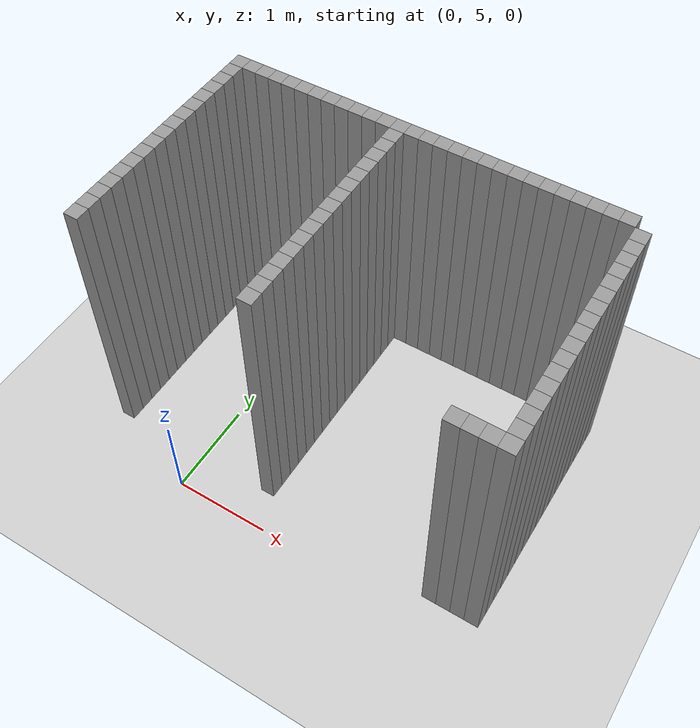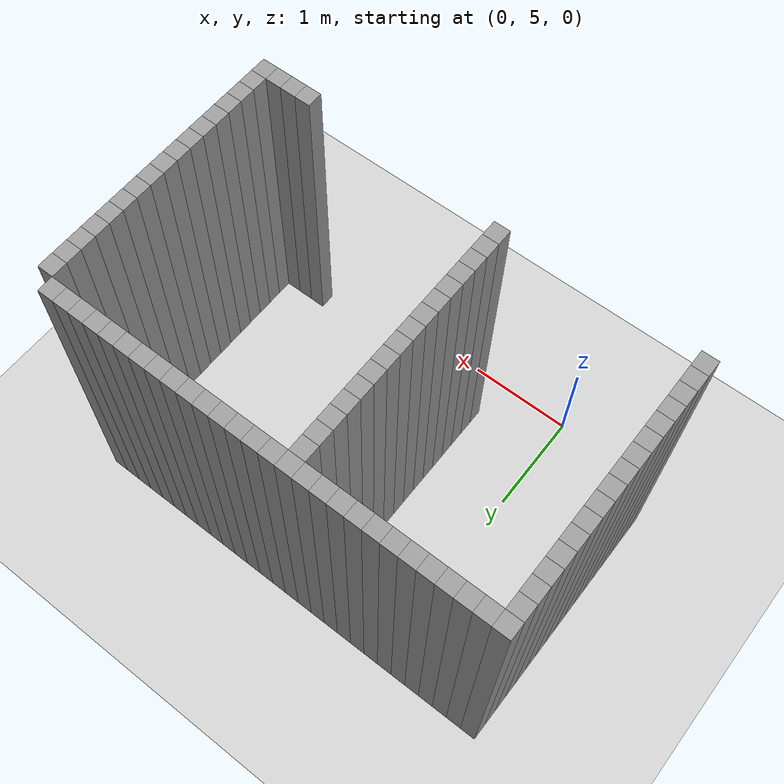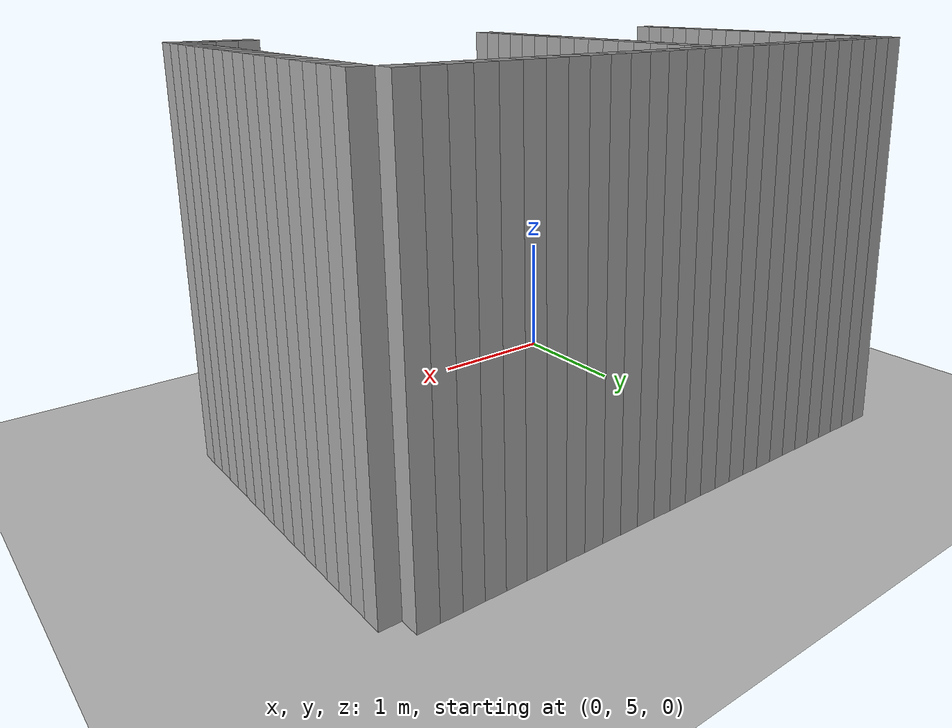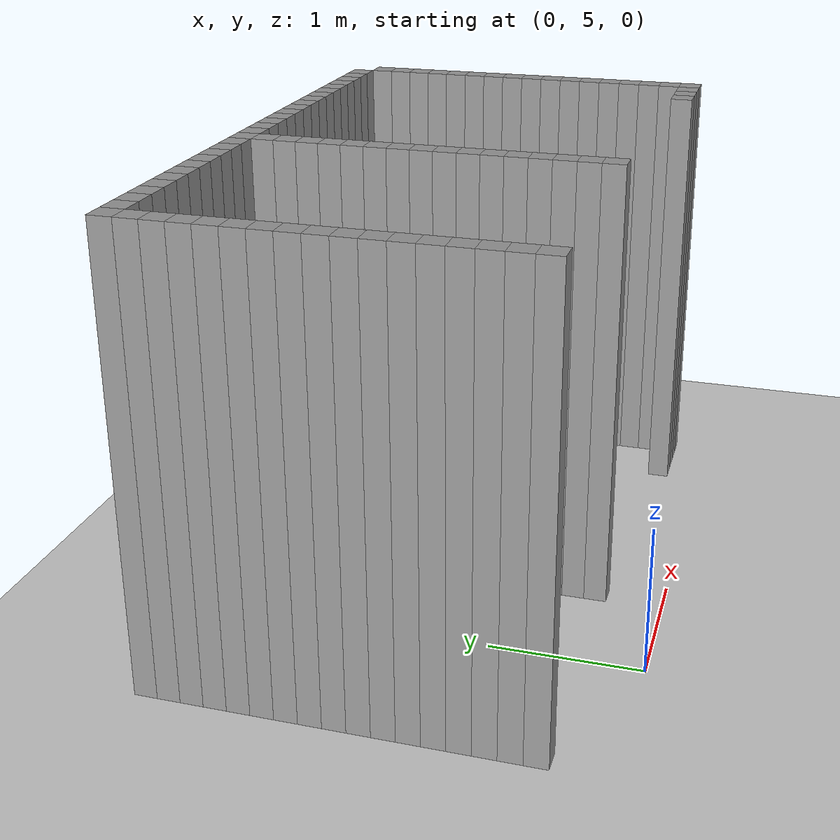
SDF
<sdf version="1.7">
 <world name="default">
  <model name="ground_plane">
   <static>1</static>
   <link name="link">
    <collision name="collision">
     <geometry><plane><normal>0 0 1</normal><size>100 100</size></plane></geometry>
     <surface>
      <contact><collide_bitmask>65535</collide_bitmask></contact>
      <friction><ode><mu>100</mu><mu2>50</mu2></ode></friction>
     </surface>
    </collision>
    <visual name="visual">
     <cast_shadows>0</cast_shadows>
     <geometry><plane><normal>0 0 1</normal><size>100 100</size></plane></geometry>
     <material>
      <script><uri>file://media/materials/scripts/gazebo.material</uri><name>Gazebo/Grey</name></script>
     </material>
    </visual>
   </link>
  </model>
  <model name="image45004">
   <pose>-1 -1 0 0 -0 0</pose>
   <link name="Wall_43">
    <collision name="Wall_43_Collision">
     <geometry><box><size>0.15 0.15 3</size></box></geometry>
     <pose>0 0 1.5 0 -0 0</pose>
    </collision>
    <visual name="Wall_43_Visual">
     <pose>0 0 1.5 0 -0 0</pose>
     <geometry><box><size>0.15 0.15 3</size></box></geometry>
     <material>
      <script><uri>file://media/materials/scripts/gazebo.material</uri><name>Gazebo/Grey</name></script>
      <ambient>1 1 1 1</ambient>
     </material>
     <meta><layer>0</layer></meta>
    </visual>
    <pose>0.0 6.45 0 0 -0 0</pose>
   </link>
   <link name="Wall_44">
    <collision name="Wall_44_Collision">
     <geometry><box><size>0.15 0.15 3</size></box></geometry>
     <pose>0 0 1.5 0 -0 0</pose>
    </collision>
    <visual name="Wall_44_Visual">
     <pose>0 0 1.5 0 -0 0</pose>
     <geometry><box><size>0.15 0.15 3</size></box></geometry>
     <material>
      <script><uri>file://media/materials/scripts/gazebo.material</uri><name>Gazebo/Grey</name></script>
      <ambient>1 1 1 1</ambient>
     </material>
     <meta><layer>0</layer></meta>
    </visual>
    <pose>0.0 6.6 0 0 -0 0</pose>
   </link>
   <link name="Wall_45">
    <collision name="Wall_45_Collision">
     <geometry><box><size>0.15 0.15 3</size></box></geometry>
     <pose>0 0 1.5 0 -0 0</pose>
    </collision>
    <visual name="Wall_45_Visual">
     <pose>0 0 1.5 0 -0 0</pose>
     <geometry><box><size>0.15 0.15 3</size></box></geometry>
     <material>
      <script><uri>file://media/materials/scripts/gazebo.material</uri><name>Gazebo/Grey</name></script>
      <ambient>1 1 1 1</ambient>
     </material>
     <meta><layer>0</layer></meta>
    </visual>
    <pose>0.0 6.75 0 0 -0 0</pose>
   </link>
   <link name="Wall_46">
    <collision name="Wall_46_Collision">
     <geometry><box><size>0.15 0.15 3</size></box></geometry>
     <pose>0 0 1.5 0 -0 0</pose>
    </collision>
    <visual name="Wall_46_Visual">
     <pose>0 0 1.5 0 -0 0</pose>
     <geometry><box><size>0.15 0.15 3</size></box></geometry>
     <material>
      <script><uri>file://media/materials/scripts/gazebo.material</uri><name>Gazebo/Grey</name></script>
      <ambient>1 1 1 1</ambient>
     </material>
     <meta><layer>0</layer></meta>
    </visual>
    <pose>0.0 6.8999999999999995 0 0 -0 0</pose>
   </link>
   <link name="Wall_47">
    <collision name="Wall_47_Collision">
     <geometry><box><size>0.15 0.15 3</size></box></geometry>
     <pose>0 0 1.5 0 -0 0</pose>
    </collision>
    <visual name="Wall_47_Visual">
     <pose>0 0 1.5 0 -0 0</pose>
     <geometry><box><size>0.15 0.15 3</size></box></geometry>
     <material>
      <script><uri>file://media/materials/scripts/gazebo.material</uri><name>Gazebo/Grey</name></script>
      <ambient>1 1 1 1</ambient>
     </material>
     <meta><layer>0</layer></meta>
    </visual>
    <pose>0.0 7.05 0 0 -0 0</pose>
   </link>
   <link name="Wall_48">
    <collision name="Wall_48_Collision">
     <geometry><box><size>0.15 0.15 3</size></box></geometry>
     <pose>0 0 1.5 0 -0 0</pose>
    </collision>
    <visual name="Wall_48_Visual">
     <pose>0 0 1.5 0 -0 0</pose>
     <geometry><box><size>0.15 0.15 3</size></box></geometry>
     <material>
      <script><uri>file://media/materials/scripts/gazebo.material</uri><name>Gazebo/Grey</name></script>
      <ambient>1 1 1 1</ambient>
     </material>
     <meta><layer>0</layer></meta>
    </visual>
    <pose>0.0 7.199999999999999 0 0 -0 0</pose>
   </link>
   <link name="Wall_49">
    <collision name="Wall_49_Collision">
     <geometry><box><size>0.15 0.15 3</size></box></geometry>
     <pose>0 0 1.5 0 -0 0</pose>
    </collision>
    <visual name="Wall_49_Visual">
     <pose>0 0 1.5 0 -0 0</pose>
     <geometry><box><size>0.15 0.15 3</size></box></geometry>
     <material>
      <script><uri>file://media/materials/scripts/gazebo.material</uri><name>Gazebo/Grey</name></script>
      <ambient>1 1 1 1</ambient>
     </material>
     <meta><layer>0</layer></meta>
    </visual>
    <pose>0.0 7.35 0 0 -0 0</pose>
   </link>
   <link name="Wall_50">
    <collision name="Wall_50_Collision">
     <geometry><box><size>0.15 0.15 3</size></box></geometry>
     <pose>0 0 1.5 0 -0 0</pose>
    </collision>
    <visual name="Wall_50_Visual">
     <pose>0 0 1.5 0 -0 0</pose>
     <geometry><box><size>0.15 0.15 3</size></box></geometry>
     <material>
      <script><uri>file://media/materials/scripts/gazebo.material</uri><name>Gazebo/Grey</name></script>
      <ambient>1 1 1 1</ambient>
     </material>
     <meta><layer>0</layer></meta>
    </visual>
    <pose>0.0 7.5 0 0 -0 0</pose>
   </link>
   <link name="Wall_51">
    <collision name="Wall_51_Collision">
     <geometry><box><size>0.15 0.15 3</size></box></geometry>
     <pose>0 0 1.5 0 -0 0</pose>
    </collision>
    <visual name="Wall_51_Visual">
     <pose>0 0 1.5 0 -0 0</pose>
     <geometry><box><size>0.15 0.15 3</size></box></geometry>
     <material>
      <script><uri>file://media/materials/scripts/gazebo.material</uri><name>Gazebo/Grey</name></script>
      <ambient>1 1 1 1</ambient>
     </material>
     <meta><layer>0</layer></meta>
    </visual>
    <pose>0.0 7.6499999999999995 0 0 -0 0</pose>
   </link>
   <link name="Wall_52">
    <collision name="Wall_52_Collision">
     <geometry><box><size>0.15 0.15 3</size></box></geometry>
     <pose>0 0 1.5 0 -0 0</pose>
    </collision>
    <visual name="Wall_52_Visual">
     <pose>0 0 1.5 0 -0 0</pose>
     <geometry><box><size>0.15 0.15 3</size></box></geometry>
     <material>
      <script><uri>file://media/materials/scripts/gazebo.material</uri><name>Gazebo/Grey</name></script>
      <ambient>1 1 1 1</ambient>
     </material>
     <meta><layer>0</layer></meta>
    </visual>
    <pose>0.0 7.8 0 0 -0 0</pose>
   </link>
   <link name="Wall_53">
    <collision name="Wall_53_Collision">
     <geometry><box><size>0.15 0.15 3</size></box></geometry>
     <pose>0 0 1.5 0 -0 0</pose>
    </collision>
    <visual name="Wall_53_Visual">
     <pose>0 0 1.5 0 -0 0</pose>
     <geometry><box><size>0.15 0.15 3</size></box></geometry>
     <material>
      <script><uri>file://media/materials/scripts/gazebo.material</uri><name>Gazebo/Grey</name></script>
      <ambient>1 1 1 1</ambient>
     </material>
     <meta><layer>0</layer></meta>
    </visual>
    <pose>0.0 7.949999999999999 0 0 -0 0</pose>
   </link>
   <link name="Wall_54">
    <collision name="Wall_54_Collision">
     <geometry><box><size>0.15 0.15 3</size></box></geometry>
     <pose>0 0 1.5 0 -0 0</pose>
    </collision>
    <visual name="Wall_54_Visual">
     <pose>0 0 1.5 0 -0 0</pose>
     <geometry><box><size>0.15 0.15 3</size></box></geometry>
     <material>
      <script><uri>file://media/materials/scripts/gazebo.material</uri><name>Gazebo/Grey</name></script>
      <ambient>1 1 1 1</ambient>
     </material>
     <meta><layer>0</layer></meta>
    </visual>
    <pose>0.0 8.1 0 0 -0 0</pose>
   </link>
   <link name="Wall_55">
    <collision name="Wall_55_Collision">
     <geometry><box><size>0.15 0.15 3</size></box></geometry>
     <pose>0 0 1.5 0 -0 0</pose>
    </collision>
    <visual name="Wall_55_Visual">
     <pose>0 0 1.5 0 -0 0</pose>
     <geometry><box><size>0.15 0.15 3</size></box></geometry>
     <material>
      <script><uri>file://media/materials/scripts/gazebo.material</uri><name>Gazebo/Grey</name></script>
      <ambient>1 1 1 1</ambient>
     </material>
     <meta><layer>0</layer></meta>
    </visual>
    <pose>0.0 8.25 0 0 -0 0</pose>
   </link>
   <link name="Wall_56">
    <collision name="Wall_56_Collision">
     <geometry><box><size>0.15 0.15 3</size></box></geometry>
     <pose>0 0 1.5 0 -0 0</pose>
    </collision>
    <visual name="Wall_56_Visual">
     <pose>0 0 1.5 0 -0 0</pose>
     <geometry><box><size>0.15 0.15 3</size></box></geometry>
     <material>
      <script><uri>file://media/materials/scripts/gazebo.material</uri><name>Gazebo/Grey</name></script>
      <ambient>1 1 1 1</ambient>
     </material>
     <meta><layer>0</layer></meta>
    </visual>
    <pose>0.0 8.4 0 0 -0 0</pose>
   </link>
   <link name="Wall_57">
    <collision name="Wall_57_Collision">
     <geometry><box><size>0.15 0.15 3</size></box></geometry>
     <pose>0 0 1.5 0 -0 0</pose>
    </collision>
    <visual name="Wall_57_Visual">
     <pose>0 0 1.5 0 -0 0</pose>
     <geometry><box><size>0.15 0.15 3</size></box></geometry>
     <material>
      <script><uri>file://media/materials/scripts/gazebo.material</uri><name>Gazebo/Grey</name></script>
      <ambient>1 1 1 1</ambient>
     </material>
     <meta><layer>0</layer></meta>
    </visual>
    <pose>0.0 8.549999999999999 0 0 -0 0</pose>
   </link>
   <link name="Wall_58">
    <collision name="Wall_58_Collision">
     <geometry><box><size>0.15 0.15 3</size></box></geometry>
     <pose>0 0 1.5 0 -0 0</pose>
    </collision>
    <visual name="Wall_58_Visual">
     <pose>0 0 1.5 0 -0 0</pose>
     <geometry><box><size>0.15 0.15 3</size></box></geometry>
     <material>
      <script><uri>file://media/materials/scripts/gazebo.material</uri><name>Gazebo/Grey</name></script>
      <ambient>1 1 1 1</ambient>
     </material>
     <meta><layer>0</layer></meta>
    </visual>
    <pose>0.0 8.7 0 0 -0 0</pose>
   </link>
   <link name="Wall_59">
    <collision name="Wall_59_Collision">
     <geometry><box><size>0.15 0.15 3</size></box></geometry>
     <pose>0 0 1.5 0 -0 0</pose>
    </collision>
    <visual name="Wall_59_Visual">
     <pose>0 0 1.5 0 -0 0</pose>
     <geometry><box><size>0.15 0.15 3</size></box></geometry>
     <material>
      <script><uri>file://media/materials/scripts/gazebo.material</uri><name>Gazebo/Grey</name></script>
      <ambient>1 1 1 1</ambient>
     </material>
     <meta><layer>0</layer></meta>
    </visual>
    <pose>0.0 8.85 0 0 -0 0</pose>
   </link>
   <link name="Wall_65">
    <collision name="Wall_65_Collision">
     <geometry><box><size>0.15 0.15 3</size></box></geometry>
     <pose>0 0 1.5 0 -0 0</pose>
    </collision>
    <visual name="Wall_65_Visual">
     <pose>0 0 1.5 0 -0 0</pose>
     <geometry><box><size>0.15 0.15 3</size></box></geometry>
     <material>
      <script><uri>file://media/materials/scripts/gazebo.material</uri><name>Gazebo/Grey</name></script>
      <ambient>1 1 1 1</ambient>
     </material>
     <meta><layer>0</layer></meta>
    </visual>
    <pose>0.15 8.85 0 0 -0 0</pose>
   </link>
   <link name="Wall_70">
    <collision name="Wall_70_Collision">
     <geometry><box><size>0.15 0.15 3</size></box></geometry>
     <pose>0 0 1.5 0 -0 0</pose>
    </collision>
    <visual name="Wall_70_Visual">
     <pose>0 0 1.5 0 -0 0</pose>
     <geometry><box><size>0.15 0.15 3</size></box></geometry>
     <material>
      <script><uri>file://media/materials/scripts/gazebo.material</uri><name>Gazebo/Grey</name></script>
      <ambient>1 1 1 1</ambient>
     </material>
     <meta><layer>0</layer></meta>
    </visual>
    <pose>0.3 8.85 0 0 -0 0</pose>
   </link>
   <link name="Wall_75">
    <collision name="Wall_75_Collision">
     <geometry><box><size>0.15 0.15 3</size></box></geometry>
     <pose>0 0 1.5 0 -0 0</pose>
    </collision>
    <visual name="Wall_75_Visual">
     <pose>0 0 1.5 0 -0 0</pose>
     <geometry><box><size>0.15 0.15 3</size></box></geometry>
     <material>
      <script><uri>file://media/materials/scripts/gazebo.material</uri><name>Gazebo/Grey</name></script>
      <ambient>1 1 1 1</ambient>
     </material>
     <meta><layer>0</layer></meta>
    </visual>
    <pose>0.44999999999999996 8.85 0 0 -0 0</pose>
   </link>
   <link name="Wall_79">
    <collision name="Wall_79_Collision">
     <geometry><box><size>0.15 0.15 3</size></box></geometry>
     <pose>0 0 1.5 0 -0 0</pose>
    </collision>
    <visual name="Wall_79_Visual">
     <pose>0 0 1.5 0 -0 0</pose>
     <geometry><box><size>0.15 0.15 3</size></box></geometry>
     <material>
      <script><uri>file://media/materials/scripts/gazebo.material</uri><name>Gazebo/Grey</name></script>
      <ambient>1 1 1 1</ambient>
     </material>
     <meta><layer>0</layer></meta>
    </visual>
    <pose>0.6 8.85 0 0 -0 0</pose>
   </link>
   <link name="Wall_83">
    <collision name="Wall_83_Collision">
     <geometry><box><size>0.15 0.15 3</size></box></geometry>
     <pose>0 0 1.5 0 -0 0</pose>
    </collision>
    <visual name="Wall_83_Visual">
     <pose>0 0 1.5 0 -0 0</pose>
     <geometry><box><size>0.15 0.15 3</size></box></geometry>
     <material>
      <script><uri>file://media/materials/scripts/gazebo.material</uri><name>Gazebo/Grey</name></script>
      <ambient>1 1 1 1</ambient>
     </material>
     <meta><layer>0</layer></meta>
    </visual>
    <pose>0.75 8.85 0 0 -0 0</pose>
   </link>
   <link name="Wall_87">
    <collision name="Wall_87_Collision">
     <geometry><box><size>0.15 0.15 3</size></box></geometry>
     <pose>0 0 1.5 0 -0 0</pose>
    </collision>
    <visual name="Wall_87_Visual">
     <pose>0 0 1.5 0 -0 0</pose>
     <geometry><box><size>0.15 0.15 3</size></box></geometry>
     <material>
      <script><uri>file://media/materials/scripts/gazebo.material</uri><name>Gazebo/Grey</name></script>
      <ambient>1 1 1 1</ambient>
     </material>
     <meta><layer>0</layer></meta>
    </visual>
    <pose>0.8999999999999999 8.85 0 0 -0 0</pose>
   </link>
   <link name="Wall_91">
    <collision name="Wall_91_Collision">
     <geometry><box><size>0.15 0.15 3</size></box></geometry>
     <pose>0 0 1.5 0 -0 0</pose>
    </collision>
    <visual name="Wall_91_Visual">
     <pose>0 0 1.5 0 -0 0</pose>
     <geometry><box><size>0.15 0.15 3</size></box></geometry>
     <material>
      <script><uri>file://media/materials/scripts/gazebo.material</uri><name>Gazebo/Grey</name></script>
      <ambient>1 1 1 1</ambient>
     </material>
     <meta><layer>0</layer></meta>
    </visual>
    <pose>1.05 8.85 0 0 -0 0</pose>
   </link>
   <link name="Wall_95">
    <collision name="Wall_95_Collision">
     <geometry><box><size>0.15 0.15 3</size></box></geometry>
     <pose>0 0 1.5 0 -0 0</pose>
    </collision>
    <visual name="Wall_95_Visual">
     <pose>0 0 1.5 0 -0 0</pose>
     <geometry><box><size>0.15 0.15 3</size></box></geometry>
     <material>
      <script><uri>file://media/materials/scripts/gazebo.material</uri><name>Gazebo/Grey</name></script>
      <ambient>1 1 1 1</ambient>
     </material>
     <meta><layer>0</layer></meta>
    </visual>
    <pose>1.2 8.85 0 0 -0 0</pose>
   </link>
   <link name="Wall_99">
    <collision name="Wall_99_Collision">
     <geometry><box><size>0.15 0.15 3</size></box></geometry>
     <pose>0 0 1.5 0 -0 0</pose>
    </collision>
    <visual name="Wall_99_Visual">
     <pose>0 0 1.5 0 -0 0</pose>
     <geometry><box><size>0.15 0.15 3</size></box></geometry>
     <material>
      <script><uri>file://media/materials/scripts/gazebo.material</uri><name>Gazebo/Grey</name></script>
      <ambient>1 1 1 1</ambient>
     </material>
     <meta><layer>0</layer></meta>
    </visual>
    <pose>1.3499999999999999 8.85 0 0 -0 0</pose>
   </link>
   <link name="Wall_104">
    <collision name="Wall_104_Collision">
     <geometry><box><size>0.15 0.15 3</size></box></geometry>
     <pose>0 0 1.5 0 -0 0</pose>
    </collision>
    <visual name="Wall_104_Visual">
     <pose>0 0 1.5 0 -0 0</pose>
     <geometry><box><size>0.15 0.15 3</size></box></geometry>
     <material>
      <script><uri>file://media/materials/scripts/gazebo.material</uri><name>Gazebo/Grey</name></script>
      <ambient>1 1 1 1</ambient>
     </material>
     <meta><layer>0</layer></meta>
    </visual>
    <pose>1.5 8.85 0 0 -0 0</pose>
   </link>
   <link name="Wall_109">
    <collision name="Wall_109_Collision">
     <geometry><box><size>0.15 0.15 3</size></box></geometry>
     <pose>0 0 1.5 0 -0 0</pose>
    </collision>
    <visual name="Wall_109_Visual">
     <pose>0 0 1.5 0 -0 0</pose>
     <geometry><box><size>0.15 0.15 3</size></box></geometry>
     <material>
      <script><uri>file://media/materials/scripts/gazebo.material</uri><name>Gazebo/Grey</name></script>
      <ambient>1 1 1 1</ambient>
     </material>
     <meta><layer>0</layer></meta>
    </visual>
    <pose>1.65 8.85 0 0 -0 0</pose>
   </link>
   <link name="Wall_125">
    <collision name="Wall_125_Collision">
     <geometry><box><size>0.15 0.15 3</size></box></geometry>
     <pose>0 0 1.5 0 -0 0</pose>
    </collision>
    <visual name="Wall_125_Visual">
     <pose>0 0 1.5 0 -0 0</pose>
     <geometry><box><size>0.15 0.15 3</size></box></geometry>
     <material>
      <script><uri>file://media/materials/scripts/gazebo.material</uri><name>Gazebo/Grey</name></script>
      <ambient>1 1 1 1</ambient>
     </material>
     <meta><layer>0</layer></meta>
    </visual>
    <pose>1.7999999999999998 6.45 0 0 -0 0</pose>
   </link>
   <link name="Wall_126">
    <collision name="Wall_126_Collision">
     <geometry><box><size>0.15 0.15 3</size></box></geometry>
     <pose>0 0 1.5 0 -0 0</pose>
    </collision>
    <visual name="Wall_126_Visual">
     <pose>0 0 1.5 0 -0 0</pose>
     <geometry><box><size>0.15 0.15 3</size></box></geometry>
     <material>
      <script><uri>file://media/materials/scripts/gazebo.material</uri><name>Gazebo/Grey</name></script>
      <ambient>1 1 1 1</ambient>
     </material>
     <meta><layer>0</layer></meta>
    </visual>
    <pose>1.7999999999999998 6.6 0 0 -0 0</pose>
   </link>
   <link name="Wall_127">
    <collision name="Wall_127_Collision">
     <geometry><box><size>0.15 0.15 3</size></box></geometry>
     <pose>0 0 1.5 0 -0 0</pose>
    </collision>
    <visual name="Wall_127_Visual">
     <pose>0 0 1.5 0 -0 0</pose>
     <geometry><box><size>0.15 0.15 3</size></box></geometry>
     <material>
      <script><uri>file://media/materials/scripts/gazebo.material</uri><name>Gazebo/Grey</name></script>
      <ambient>1 1 1 1</ambient>
     </material>
     <meta><layer>0</layer></meta>
    </visual>
    <pose>1.7999999999999998 6.75 0 0 -0 0</pose>
   </link>
   <link name="Wall_128">
    <collision name="Wall_128_Collision">
     <geometry><box><size>0.15 0.15 3</size></box></geometry>
     <pose>0 0 1.5 0 -0 0</pose>
    </collision>
    <visual name="Wall_128_Visual">
     <pose>0 0 1.5 0 -0 0</pose>
     <geometry><box><size>0.15 0.15 3</size></box></geometry>
     <material>
      <script><uri>file://media/materials/scripts/gazebo.material</uri><name>Gazebo/Grey</name></script>
      <ambient>1 1 1 1</ambient>
     </material>
     <meta><layer>0</layer></meta>
    </visual>
    <pose>1.7999999999999998 6.8999999999999995 0 0 -0 0</pose>
   </link>
   <link name="Wall_129">
    <collision name="Wall_129_Collision">
     <geometry><box><size>0.15 0.15 3</size></box></geometry>
     <pose>0 0 1.5 0 -0 0</pose>
    </collision>
    <visual name="Wall_129_Visual">
     <pose>0 0 1.5 0 -0 0</pose>
     <geometry><box><size>0.15 0.15 3</size></box></geometry>
     <material>
      <script><uri>file://media/materials/scripts/gazebo.material</uri><name>Gazebo/Grey</name></script>
      <ambient>1 1 1 1</ambient>
     </material>
     <meta><layer>0</layer></meta>
    </visual>
    <pose>1.7999999999999998 7.05 0 0 -0 0</pose>
   </link>
   <link name="Wall_130">
    <collision name="Wall_130_Collision">
     <geometry><box><size>0.15 0.15 3</size></box></geometry>
     <pose>0 0 1.5 0 -0 0</pose>
    </collision>
    <visual name="Wall_130_Visual">
     <pose>0 0 1.5 0 -0 0</pose>
     <geometry><box><size>0.15 0.15 3</size></box></geometry>
     <material>
      <script><uri>file://media/materials/scripts/gazebo.material</uri><name>Gazebo/Grey</name></script>
      <ambient>1 1 1 1</ambient>
     </material>
     <meta><layer>0</layer></meta>
    </visual>
    <pose>1.7999999999999998 7.199999999999999 0 0 -0 0</pose>
   </link>
   <link name="Wall_131">
    <collision name="Wall_131_Collision">
     <geometry><box><size>0.15 0.15 3</size></box></geometry>
     <pose>0 0 1.5 0 -0 0</pose>
    </collision>
    <visual name="Wall_131_Visual">
     <pose>0 0 1.5 0 -0 0</pose>
     <geometry><box><size>0.15 0.15 3</size></box></geometry>
     <material>
      <script><uri>file://media/materials/scripts/gazebo.material</uri><name>Gazebo/Grey</name></script>
      <ambient>1 1 1 1</ambient>
     </material>
     <meta><layer>0</layer></meta>
    </visual>
    <pose>1.7999999999999998 7.35 0 0 -0 0</pose>
   </link>
   <link name="Wall_132">
    <collision name="Wall_132_Collision">
     <geometry><box><size>0.15 0.15 3</size></box></geometry>
     <pose>0 0 1.5 0 -0 0</pose>
    </collision>
    <visual name="Wall_132_Visual">
     <pose>0 0 1.5 0 -0 0</pose>
     <geometry><box><size>0.15 0.15 3</size></box></geometry>
     <material>
      <script><uri>file://media/materials/scripts/gazebo.material</uri><name>Gazebo/Grey</name></script>
      <ambient>1 1 1 1</ambient>
     </material>
     <meta><layer>0</layer></meta>
    </visual>
    <pose>1.7999999999999998 7.5 0 0 -0 0</pose>
   </link>
   <link name="Wall_133">
    <collision name="Wall_133_Collision">
     <geometry><box><size>0.15 0.15 3</size></box></geometry>
     <pose>0 0 1.5 0 -0 0</pose>
    </collision>
    <visual name="Wall_133_Visual">
     <pose>0 0 1.5 0 -0 0</pose>
     <geometry><box><size>0.15 0.15 3</size></box></geometry>
     <material>
      <script><uri>file://media/materials/scripts/gazebo.material</uri><name>Gazebo/Grey</name></script>
      <ambient>1 1 1 1</ambient>
     </material>
     <meta><layer>0</layer></meta>
    </visual>
    <pose>1.7999999999999998 7.6499999999999995 0 0 -0 0</pose>
   </link>
   <link name="Wall_134">
    <collision name="Wall_134_Collision">
     <geometry><box><size>0.15 0.15 3</size></box></geometry>
     <pose>0 0 1.5 0 -0 0</pose>
    </collision>
    <visual name="Wall_134_Visual">
     <pose>0 0 1.5 0 -0 0</pose>
     <geometry><box><size>0.15 0.15 3</size></box></geometry>
     <material>
      <script><uri>file://media/materials/scripts/gazebo.material</uri><name>Gazebo/Grey</name></script>
      <ambient>1 1 1 1</ambient>
     </material>
     <meta><layer>0</layer></meta>
    </visual>
    <pose>1.7999999999999998 7.8 0 0 -0 0</pose>
   </link>
   <link name="Wall_135">
    <collision name="Wall_135_Collision">
     <geometry><box><size>0.15 0.15 3</size></box></geometry>
     <pose>0 0 1.5 0 -0 0</pose>
    </collision>
    <visual name="Wall_135_Visual">
     <pose>0 0 1.5 0 -0 0</pose>
     <geometry><box><size>0.15 0.15 3</size></box></geometry>
     <material>
      <script><uri>file://media/materials/scripts/gazebo.material</uri><name>Gazebo/Grey</name></script>
      <ambient>1 1 1 1</ambient>
     </material>
     <meta><layer>0</layer></meta>
    </visual>
    <pose>1.7999999999999998 7.949999999999999 0 0 -0 0</pose>
   </link>
   <link name="Wall_136">
    <collision name="Wall_136_Collision">
     <geometry><box><size>0.15 0.15 3</size></box></geometry>
     <pose>0 0 1.5 0 -0 0</pose>
    </collision>
    <visual name="Wall_136_Visual">
     <pose>0 0 1.5 0 -0 0</pose>
     <geometry><box><size>0.15 0.15 3</size></box></geometry>
     <material>
      <script><uri>file://media/materials/scripts/gazebo.material</uri><name>Gazebo/Grey</name></script>
      <ambient>1 1 1 1</ambient>
     </material>
     <meta><layer>0</layer></meta>
    </visual>
    <pose>1.7999999999999998 8.1 0 0 -0 0</pose>
   </link>
   <link name="Wall_137">
    <collision name="Wall_137_Collision">
     <geometry><box><size>0.15 0.15 3</size></box></geometry>
     <pose>0 0 1.5 0 -0 0</pose>
    </collision>
    <visual name="Wall_137_Visual">
     <pose>0 0 1.5 0 -0 0</pose>
     <geometry><box><size>0.15 0.15 3</size></box></geometry>
     <material>
      <script><uri>file://media/materials/scripts/gazebo.material</uri><name>Gazebo/Grey</name></script>
      <ambient>1 1 1 1</ambient>
     </material>
     <meta><layer>0</layer></meta>
    </visual>
    <pose>1.7999999999999998 8.25 0 0 -0 0</pose>
   </link>
   <link name="Wall_138">
    <collision name="Wall_138_Collision">
     <geometry><box><size>0.15 0.15 3</size></box></geometry>
     <pose>0 0 1.5 0 -0 0</pose>
    </collision>
    <visual name="Wall_138_Visual">
     <pose>0 0 1.5 0 -0 0</pose>
     <geometry><box><size>0.15 0.15 3</size></box></geometry>
     <material>
      <script><uri>file://media/materials/scripts/gazebo.material</uri><name>Gazebo/Grey</name></script>
      <ambient>1 1 1 1</ambient>
     </material>
     <meta><layer>0</layer></meta>
    </visual>
    <pose>1.7999999999999998 8.4 0 0 -0 0</pose>
   </link>
   <link name="Wall_139">
    <collision name="Wall_139_Collision">
     <geometry><box><size>0.15 0.15 3</size></box></geometry>
     <pose>0 0 1.5 0 -0 0</pose>
    </collision>
    <visual name="Wall_139_Visual">
     <pose>0 0 1.5 0 -0 0</pose>
     <geometry><box><size>0.15 0.15 3</size></box></geometry>
     <material>
      <script><uri>file://media/materials/scripts/gazebo.material</uri><name>Gazebo/Grey</name></script>
      <ambient>1 1 1 1</ambient>
     </material>
     <meta><layer>0</layer></meta>
    </visual>
    <pose>1.7999999999999998 8.549999999999999 0 0 -0 0</pose>
   </link>
   <link name="Wall_140">
    <collision name="Wall_140_Collision">
     <geometry><box><size>0.15 0.15 3</size></box></geometry>
     <pose>0 0 1.5 0 -0 0</pose>
    </collision>
    <visual name="Wall_140_Visual">
     <pose>0 0 1.5 0 -0 0</pose>
     <geometry><box><size>0.15 0.15 3</size></box></geometry>
     <material>
      <script><uri>file://media/materials/scripts/gazebo.material</uri><name>Gazebo/Grey</name></script>
      <ambient>1 1 1 1</ambient>
     </material>
     <meta><layer>0</layer></meta>
    </visual>
    <pose>1.7999999999999998 8.7 0 0 -0 0</pose>
   </link>
   <link name="Wall_141">
    <collision name="Wall_141_Collision">
     <geometry><box><size>0.15 0.15 3</size></box></geometry>
     <pose>0 0 1.5 0 -0 0</pose>
    </collision>
    <visual name="Wall_141_Visual">
     <pose>0 0 1.5 0 -0 0</pose>
     <geometry><box><size>0.15 0.15 3</size></box></geometry>
     <material>
      <script><uri>file://media/materials/scripts/gazebo.material</uri><name>Gazebo/Grey</name></script>
      <ambient>1 1 1 1</ambient>
     </material>
     <meta><layer>0</layer></meta>
    </visual>
    <pose>1.7999999999999998 8.85 0 0 -0 0</pose>
   </link>
   <link name="Wall_150">
    <collision name="Wall_150_Collision">
     <geometry><box><size>0.15 0.15 3</size></box></geometry>
     <pose>0 0 1.5 0 -0 0</pose>
    </collision>
    <visual name="Wall_150_Visual">
     <pose>0 0 1.5 0 -0 0</pose>
     <geometry><box><size>0.15 0.15 3</size></box></geometry>
     <material>
      <script><uri>file://media/materials/scripts/gazebo.material</uri><name>Gazebo/Grey</name></script>
      <ambient>1 1 1 1</ambient>
     </material>
     <meta><layer>0</layer></meta>
    </visual>
    <pose>1.95 8.85 0 0 -0 0</pose>
   </link>
   <link name="Wall_154">
    <collision name="Wall_154_Collision">
     <geometry><box><size>0.15 0.15 3</size></box></geometry>
     <pose>0 0 1.5 0 -0 0</pose>
    </collision>
    <visual name="Wall_154_Visual">
     <pose>0 0 1.5 0 -0 0</pose>
     <geometry><box><size>0.15 0.15 3</size></box></geometry>
     <material>
      <script><uri>file://media/materials/scripts/gazebo.material</uri><name>Gazebo/Grey</name></script>
      <ambient>1 1 1 1</ambient>
     </material>
     <meta><layer>0</layer></meta>
    </visual>
    <pose>2.1 8.85 0 0 -0 0</pose>
   </link>
   <link name="Wall_158">
    <collision name="Wall_158_Collision">
     <geometry><box><size>0.15 0.15 3</size></box></geometry>
     <pose>0 0 1.5 0 -0 0</pose>
    </collision>
    <visual name="Wall_158_Visual">
     <pose>0 0 1.5 0 -0 0</pose>
     <geometry><box><size>0.15 0.15 3</size></box></geometry>
     <material>
      <script><uri>file://media/materials/scripts/gazebo.material</uri><name>Gazebo/Grey</name></script>
      <ambient>1 1 1 1</ambient>
     </material>
     <meta><layer>0</layer></meta>
    </visual>
    <pose>2.25 8.85 0 0 -0 0</pose>
   </link>
   <link name="Wall_161">
    <collision name="Wall_161_Collision">
     <geometry><box><size>0.15 0.15 3</size></box></geometry>
     <pose>0 0 1.5 0 -0 0</pose>
    </collision>
    <visual name="Wall_161_Visual">
     <pose>0 0 1.5 0 -0 0</pose>
     <geometry><box><size>0.15 0.15 3</size></box></geometry>
     <material>
      <script><uri>file://media/materials/scripts/gazebo.material</uri><name>Gazebo/Grey</name></script>
      <ambient>1 1 1 1</ambient>
     </material>
     <meta><layer>0</layer></meta>
    </visual>
    <pose>2.4 8.85 0 0 -0 0</pose>
   </link>
   <link name="Wall_163">
    <collision name="Wall_163_Collision">
     <geometry><box><size>0.15 0.15 3</size></box></geometry>
     <pose>0 0 1.5 0 -0 0</pose>
    </collision>
    <visual name="Wall_163_Visual">
     <pose>0 0 1.5 0 -0 0</pose>
     <geometry><box><size>0.15 0.15 3</size></box></geometry>
     <material>
      <script><uri>file://media/materials/scripts/gazebo.material</uri><name>Gazebo/Grey</name></script>
      <ambient>1 1 1 1</ambient>
     </material>
     <meta><layer>0</layer></meta>
    </visual>
    <pose>2.55 8.85 0 0 -0 0</pose>
   </link>
   <link name="Wall_165">
    <collision name="Wall_165_Collision">
     <geometry><box><size>0.15 0.15 3</size></box></geometry>
     <pose>0 0 1.5 0 -0 0</pose>
    </collision>
    <visual name="Wall_165_Visual">
     <pose>0 0 1.5 0 -0 0</pose>
     <geometry><box><size>0.15 0.15 3</size></box></geometry>
     <material>
      <script><uri>file://media/materials/scripts/gazebo.material</uri><name>Gazebo/Grey</name></script>
      <ambient>1 1 1 1</ambient>
     </material>
     <meta><layer>0</layer></meta>
    </visual>
    <pose>2.6999999999999997 8.85 0 0 -0 0</pose>
   </link>
   <link name="Wall_167">
    <collision name="Wall_167_Collision">
     <geometry><box><size>0.15 0.15 3</size></box></geometry>
     <pose>0 0 1.5 0 -0 0</pose>
    </collision>
    <visual name="Wall_167_Visual">
     <pose>0 0 1.5 0 -0 0</pose>
     <geometry><box><size>0.15 0.15 3</size></box></geometry>
     <material>
      <script><uri>file://media/materials/scripts/gazebo.material</uri><name>Gazebo/Grey</name></script>
      <ambient>1 1 1 1</ambient>
     </material>
     <meta><layer>0</layer></meta>
    </visual>
    <pose>2.85 8.85 0 0 -0 0</pose>
   </link>
   <link name="Wall_169">
    <collision name="Wall_169_Collision">
     <geometry><box><size>0.15 0.15 3</size></box></geometry>
     <pose>0 0 1.5 0 -0 0</pose>
    </collision>
    <visual name="Wall_169_Visual">
     <pose>0 0 1.5 0 -0 0</pose>
     <geometry><box><size>0.15 0.15 3</size></box></geometry>
     <material>
      <script><uri>file://media/materials/scripts/gazebo.material</uri><name>Gazebo/Grey</name></script>
      <ambient>1 1 1 1</ambient>
     </material>
     <meta><layer>0</layer></meta>
    </visual>
    <pose>3.0 8.85 0 0 -0 0</pose>
   </link>
   <link name="Wall_171">
    <collision name="Wall_171_Collision">
     <geometry><box><size>0.15 0.15 3</size></box></geometry>
     <pose>0 0 1.5 0 -0 0</pose>
    </collision>
    <visual name="Wall_171_Visual">
     <pose>0 0 1.5 0 -0 0</pose>
     <geometry><box><size>0.15 0.15 3</size></box></geometry>
     <material>
      <script><uri>file://media/materials/scripts/gazebo.material</uri><name>Gazebo/Grey</name></script>
      <ambient>1 1 1 1</ambient>
     </material>
     <meta><layer>0</layer></meta>
    </visual>
    <pose>3.15 8.85 0 0 -0 0</pose>
   </link>
   <link name="Wall_173">
    <collision name="Wall_173_Collision">
     <geometry><box><size>0.15 0.15 3</size></box></geometry>
     <pose>0 0 1.5 0 -0 0</pose>
    </collision>
    <visual name="Wall_173_Visual">
     <pose>0 0 1.5 0 -0 0</pose>
     <geometry><box><size>0.15 0.15 3</size></box></geometry>
     <material>
      <script><uri>file://media/materials/scripts/gazebo.material</uri><name>Gazebo/Grey</name></script>
      <ambient>1 1 1 1</ambient>
     </material>
     <meta><layer>0</layer></meta>
    </visual>
    <pose>3.3 8.85 0 0 -0 0</pose>
   </link>
   <link name="Wall_176">
    <collision name="Wall_176_Collision">
     <geometry><box><size>0.15 0.15 3</size></box></geometry>
     <pose>0 0 1.5 0 -0 0</pose>
    </collision>
    <visual name="Wall_176_Visual">
     <pose>0 0 1.5 0 -0 0</pose>
     <geometry><box><size>0.15 0.15 3</size></box></geometry>
     <material>
      <script><uri>file://media/materials/scripts/gazebo.material</uri><name>Gazebo/Grey</name></script>
      <ambient>1 1 1 1</ambient>
     </material>
     <meta><layer>0</layer></meta>
    </visual>
    <pose>3.4499999999999997 8.85 0 0 -0 0</pose>
   </link>
   <link name="Wall_191">
    <collision name="Wall_191_Collision">
     <geometry><box><size>0.15 0.15 3</size></box></geometry>
     <pose>0 0 1.5 0 -0 0</pose>
    </collision>
    <visual name="Wall_191_Visual">
     <pose>0 0 1.5 0 -0 0</pose>
     <geometry><box><size>0.15 0.15 3</size></box></geometry>
     <material>
      <script><uri>file://media/materials/scripts/gazebo.material</uri><name>Gazebo/Grey</name></script>
      <ambient>1 1 1 1</ambient>
     </material>
     <meta><layer>0</layer></meta>
    </visual>
    <pose>3.5999999999999996 8.85 0 0 -0 0</pose>
   </link>
   <link name="Wall_196">
    <collision name="Wall_196_Collision">
     <geometry><box><size>0.15 0.15 3</size></box></geometry>
     <pose>0 0 1.5 0 -0 0</pose>
    </collision>
    <visual name="Wall_196_Visual">
     <pose>0 0 1.5 0 -0 0</pose>
     <geometry><box><size>0.15 0.15 3</size></box></geometry>
     <material>
      <script><uri>file://media/materials/scripts/gazebo.material</uri><name>Gazebo/Grey</name></script>
      <ambient>1 1 1 1</ambient>
     </material>
     <meta><layer>0</layer></meta>
    </visual>
    <pose>3.75 6.3 0 0 -0 0</pose>
   </link>
   <link name="Wall_197">
    <collision name="Wall_197_Collision">
     <geometry><box><size>0.15 0.15 3</size></box></geometry>
     <pose>0 0 1.5 0 -0 0</pose>
    </collision>
    <visual name="Wall_197_Visual">
     <pose>0 0 1.5 0 -0 0</pose>
     <geometry><box><size>0.15 0.15 3</size></box></geometry>
     <material>
      <script><uri>file://media/materials/scripts/gazebo.material</uri><name>Gazebo/Grey</name></script>
      <ambient>1 1 1 1</ambient>
     </material>
     <meta><layer>0</layer></meta>
    </visual>
    <pose>3.75 8.85 0 0 -0 0</pose>
   </link>
   <link name="Wall_212">
    <collision name="Wall_212_Collision">
     <geometry><box><size>0.15 0.15 3</size></box></geometry>
     <pose>0 0 1.5 0 -0 0</pose>
    </collision>
    <visual name="Wall_212_Visual">
     <pose>0 0 1.5 0 -0 0</pose>
     <geometry><box><size>0.15 0.15 3</size></box></geometry>
     <material>
      <script><uri>file://media/materials/scripts/gazebo.material</uri><name>Gazebo/Grey</name></script>
      <ambient>1 1 1 1</ambient>
     </material>
     <meta><layer>0</layer></meta>
    </visual>
    <pose>3.9 6.3 0 0 -0 0</pose>
   </link>
   <link name="Wall_213">
    <collision name="Wall_213_Collision">
     <geometry><box><size>0.15 0.15 3</size></box></geometry>
     <pose>0 0 1.5 0 -0 0</pose>
    </collision>
    <visual name="Wall_213_Visual">
     <pose>0 0 1.5 0 -0 0</pose>
     <geometry><box><size>0.15 0.15 3</size></box></geometry>
     <material>
      <script><uri>file://media/materials/scripts/gazebo.material</uri><name>Gazebo/Grey</name></script>
      <ambient>1 1 1 1</ambient>
     </material>
     <meta><layer>0</layer></meta>
    </visual>
    <pose>3.9 8.85 0 0 -0 0</pose>
   </link>
   <link name="Wall_218">
    <collision name="Wall_218_Collision">
     <geometry><box><size>0.15 0.15 3</size></box></geometry>
     <pose>0 0 1.5 0 -0 0</pose>
    </collision>
    <visual name="Wall_218_Visual">
     <pose>0 0 1.5 0 -0 0</pose>
     <geometry><box><size>0.15 0.15 3</size></box></geometry>
     <material>
      <script><uri>file://media/materials/scripts/gazebo.material</uri><name>Gazebo/Grey</name></script>
      <ambient>1 1 1 1</ambient>
     </material>
     <meta><layer>0</layer></meta>
    </visual>
    <pose>4.05 6.3 0 0 -0 0</pose>
   </link>
   <link name="Wall_219">
    <collision name="Wall_219_Collision">
     <geometry><box><size>0.15 0.15 3</size></box></geometry>
     <pose>0 0 1.5 0 -0 0</pose>
    </collision>
    <visual name="Wall_219_Visual">
     <pose>0 0 1.5 0 -0 0</pose>
     <geometry><box><size>0.15 0.15 3</size></box></geometry>
     <material>
      <script><uri>file://media/materials/scripts/gazebo.material</uri><name>Gazebo/Grey</name></script>
      <ambient>1 1 1 1</ambient>
     </material>
     <meta><layer>0</layer></meta>
    </visual>
    <pose>4.05 8.85 0 0 -0 0</pose>
   </link>
   <link name="Wall_224">
    <collision name="Wall_224_Collision">
     <geometry><box><size>0.15 0.15 3</size></box></geometry>
     <pose>0 0 1.5 0 -0 0</pose>
    </collision>
    <visual name="Wall_224_Visual">
     <pose>0 0 1.5 0 -0 0</pose>
     <geometry><box><size>0.15 0.15 3</size></box></geometry>
     <material>
      <script><uri>file://media/materials/scripts/gazebo.material</uri><name>Gazebo/Grey</name></script>
      <ambient>1 1 1 1</ambient>
     </material>
     <meta><layer>0</layer></meta>
    </visual>
    <pose>4.2 6.3 0 0 -0 0</pose>
   </link>
   <link name="Wall_225">
    <collision name="Wall_225_Collision">
     <geometry><box><size>0.15 0.15 3</size></box></geometry>
     <pose>0 0 1.5 0 -0 0</pose>
    </collision>
    <visual name="Wall_225_Visual">
     <pose>0 0 1.5 0 -0 0</pose>
     <geometry><box><size>0.15 0.15 3</size></box></geometry>
     <material>
      <script><uri>file://media/materials/scripts/gazebo.material</uri><name>Gazebo/Grey</name></script>
      <ambient>1 1 1 1</ambient>
     </material>
     <meta><layer>0</layer></meta>
    </visual>
    <pose>4.2 6.45 0 0 -0 0</pose>
   </link>
   <link name="Wall_226">
    <collision name="Wall_226_Collision">
     <geometry><box><size>0.15 0.15 3</size></box></geometry>
     <pose>0 0 1.5 0 -0 0</pose>
    </collision>
    <visual name="Wall_226_Visual">
     <pose>0 0 1.5 0 -0 0</pose>
     <geometry><box><size>0.15 0.15 3</size></box></geometry>
     <material>
      <script><uri>file://media/materials/scripts/gazebo.material</uri><name>Gazebo/Grey</name></script>
      <ambient>1 1 1 1</ambient>
     </material>
     <meta><layer>0</layer></meta>
    </visual>
    <pose>4.2 6.6 0 0 -0 0</pose>
   </link>
   <link name="Wall_227">
    <collision name="Wall_227_Collision">
     <geometry><box><size>0.15 0.15 3</size></box></geometry>
     <pose>0 0 1.5 0 -0 0</pose>
    </collision>
    <visual name="Wall_227_Visual">
     <pose>0 0 1.5 0 -0 0</pose>
     <geometry><box><size>0.15 0.15 3</size></box></geometry>
     <material>
      <script><uri>file://media/materials/scripts/gazebo.material</uri><name>Gazebo/Grey</name></script>
      <ambient>1 1 1 1</ambient>
     </material>
     <meta><layer>0</layer></meta>
    </visual>
    <pose>4.2 6.75 0 0 -0 0</pose>
   </link>
   <link name="Wall_228">
    <collision name="Wall_228_Collision">
     <geometry><box><size>0.15 0.15 3</size></box></geometry>
     <pose>0 0 1.5 0 -0 0</pose>
    </collision>
    <visual name="Wall_228_Visual">
     <pose>0 0 1.5 0 -0 0</pose>
     <geometry><box><size>0.15 0.15 3</size></box></geometry>
     <material>
      <script><uri>file://media/materials/scripts/gazebo.material</uri><name>Gazebo/Grey</name></script>
      <ambient>1 1 1 1</ambient>
     </material>
     <meta><layer>0</layer></meta>
    </visual>
    <pose>4.2 6.8999999999999995 0 0 -0 0</pose>
   </link>
   <link name="Wall_229">
    <collision name="Wall_229_Collision">
     <geometry><box><size>0.15 0.15 3</size></box></geometry>
     <pose>0 0 1.5 0 -0 0</pose>
    </collision>
    <visual name="Wall_229_Visual">
     <pose>0 0 1.5 0 -0 0</pose>
     <geometry><box><size>0.15 0.15 3</size></box></geometry>
     <material>
      <script><uri>file://media/materials/scripts/gazebo.material</uri><name>Gazebo/Grey</name></script>
      <ambient>1 1 1 1</ambient>
     </material>
     <meta><layer>0</layer></meta>
    </visual>
    <pose>4.2 7.05 0 0 -0 0</pose>
   </link>
   <link name="Wall_230">
    <collision name="Wall_230_Collision">
     <geometry><box><size>0.15 0.15 3</size></box></geometry>
     <pose>0 0 1.5 0 -0 0</pose>
    </collision>
    <visual name="Wall_230_Visual">
     <pose>0 0 1.5 0 -0 0</pose>
     <geometry><box><size>0.15 0.15 3</size></box></geometry>
     <material>
      <script><uri>file://media/materials/scripts/gazebo.material</uri><name>Gazebo/Grey</name></script>
      <ambient>1 1 1 1</ambient>
     </material>
     <meta><layer>0</layer></meta>
    </visual>
    <pose>4.2 7.199999999999999 0 0 -0 0</pose>
   </link>
   <link name="Wall_231">
    <collision name="Wall_231_Collision">
     <geometry><box><size>0.15 0.15 3</size></box></geometry>
     <pose>0 0 1.5 0 -0 0</pose>
    </collision>
    <visual name="Wall_231_Visual">
     <pose>0 0 1.5 0 -0 0</pose>
     <geometry><box><size>0.15 0.15 3</size></box></geometry>
     <material>
      <script><uri>file://media/materials/scripts/gazebo.material</uri><name>Gazebo/Grey</name></script>
      <ambient>1 1 1 1</ambient>
     </material>
     <meta><layer>0</layer></meta>
    </visual>
    <pose>4.2 7.35 0 0 -0 0</pose>
   </link>
   <link name="Wall_232">
    <collision name="Wall_232_Collision">
     <geometry><box><size>0.15 0.15 3</size></box></geometry>
     <pose>0 0 1.5 0 -0 0</pose>
    </collision>
    <visual name="Wall_232_Visual">
     <pose>0 0 1.5 0 -0 0</pose>
     <geometry><box><size>0.15 0.15 3</size></box></geometry>
     <material>
      <script><uri>file://media/materials/scripts/gazebo.material</uri><name>Gazebo/Grey</name></script>
      <ambient>1 1 1 1</ambient>
     </material>
     <meta><layer>0</layer></meta>
    </visual>
    <pose>4.2 7.5 0 0 -0 0</pose>
   </link>
   <link name="Wall_233">
    <collision name="Wall_233_Collision">
     <geometry><box><size>0.15 0.15 3</size></box></geometry>
     <pose>0 0 1.5 0 -0 0</pose>
    </collision>
    <visual name="Wall_233_Visual">
     <pose>0 0 1.5 0 -0 0</pose>
     <geometry><box><size>0.15 0.15 3</size></box></geometry>
     <material>
      <script><uri>file://media/materials/scripts/gazebo.material</uri><name>Gazebo/Grey</name></script>
      <ambient>1 1 1 1</ambient>
     </material>
     <meta><layer>0</layer></meta>
    </visual>
    <pose>4.2 7.6499999999999995 0 0 -0 0</pose>
   </link>
   <link name="Wall_234">
    <collision name="Wall_234_Collision">
     <geometry><box><size>0.15 0.15 3</size></box></geometry>
     <pose>0 0 1.5 0 -0 0</pose>
    </collision>
    <visual name="Wall_234_Visual">
     <pose>0 0 1.5 0 -0 0</pose>
     <geometry><box><size>0.15 0.15 3</size></box></geometry>
     <material>
      <script><uri>file://media/materials/scripts/gazebo.material</uri><name>Gazebo/Grey</name></script>
      <ambient>1 1 1 1</ambient>
     </material>
     <meta><layer>0</layer></meta>
    </visual>
    <pose>4.2 7.8 0 0 -0 0</pose>
   </link>
   <link name="Wall_235">
    <collision name="Wall_235_Collision">
     <geometry><box><size>0.15 0.15 3</size></box></geometry>
     <pose>0 0 1.5 0 -0 0</pose>
    </collision>
    <visual name="Wall_235_Visual">
     <pose>0 0 1.5 0 -0 0</pose>
     <geometry><box><size>0.15 0.15 3</size></box></geometry>
     <material>
      <script><uri>file://media/materials/scripts/gazebo.material</uri><name>Gazebo/Grey</name></script>
      <ambient>1 1 1 1</ambient>
     </material>
     <meta><layer>0</layer></meta>
    </visual>
    <pose>4.2 7.949999999999999 0 0 -0 0</pose>
   </link>
   <link name="Wall_236">
    <collision name="Wall_236_Collision">
     <geometry><box><size>0.15 0.15 3</size></box></geometry>
     <pose>0 0 1.5 0 -0 0</pose>
    </collision>
    <visual name="Wall_236_Visual">
     <pose>0 0 1.5 0 -0 0</pose>
     <geometry><box><size>0.15 0.15 3</size></box></geometry>
     <material>
      <script><uri>file://media/materials/scripts/gazebo.material</uri><name>Gazebo/Grey</name></script>
      <ambient>1 1 1 1</ambient>
     </material>
     <meta><layer>0</layer></meta>
    </visual>
    <pose>4.2 8.1 0 0 -0 0</pose>
   </link>
   <link name="Wall_237">
    <collision name="Wall_237_Collision">
     <geometry><box><size>0.15 0.15 3</size></box></geometry>
     <pose>0 0 1.5 0 -0 0</pose>
    </collision>
    <visual name="Wall_237_Visual">
     <pose>0 0 1.5 0 -0 0</pose>
     <geometry><box><size>0.15 0.15 3</size></box></geometry>
     <material>
      <script><uri>file://media/materials/scripts/gazebo.material</uri><name>Gazebo/Grey</name></script>
      <ambient>1 1 1 1</ambient>
     </material>
     <meta><layer>0</layer></meta>
    </visual>
    <pose>4.2 8.25 0 0 -0 0</pose>
   </link>
   <link name="Wall_238">
    <collision name="Wall_238_Collision">
     <geometry><box><size>0.15 0.15 3</size></box></geometry>
     <pose>0 0 1.5 0 -0 0</pose>
    </collision>
    <visual name="Wall_238_Visual">
     <pose>0 0 1.5 0 -0 0</pose>
     <geometry><box><size>0.15 0.15 3</size></box></geometry>
     <material>
      <script><uri>file://media/materials/scripts/gazebo.material</uri><name>Gazebo/Grey</name></script>
      <ambient>1 1 1 1</ambient>
     </material>
     <meta><layer>0</layer></meta>
    </visual>
    <pose>4.2 8.4 0 0 -0 0</pose>
   </link>
   <link name="Wall_239">
    <collision name="Wall_239_Collision">
     <geometry><box><size>0.15 0.15 3</size></box></geometry>
     <pose>0 0 1.5 0 -0 0</pose>
    </collision>
    <visual name="Wall_239_Visual">
     <pose>0 0 1.5 0 -0 0</pose>
     <geometry><box><size>0.15 0.15 3</size></box></geometry>
     <material>
      <script><uri>file://media/materials/scripts/gazebo.material</uri><name>Gazebo/Grey</name></script>
      <ambient>1 1 1 1</ambient>
     </material>
     <meta><layer>0</layer></meta>
    </visual>
    <pose>4.2 8.549999999999999 0 0 -0 0</pose>
   </link>
   <link name="Wall_240">
    <collision name="Wall_240_Collision">
     <geometry><box><size>0.15 0.15 3</size></box></geometry>
     <pose>0 0 1.5 0 -0 0</pose>
    </collision>
    <visual name="Wall_240_Visual">
     <pose>0 0 1.5 0 -0 0</pose>
     <geometry><box><size>0.15 0.15 3</size></box></geometry>
     <material>
      <script><uri>file://media/materials/scripts/gazebo.material</uri><name>Gazebo/Grey</name></script>
      <ambient>1 1 1 1</ambient>
     </material>
     <meta><layer>0</layer></meta>
    </visual>
    <pose>4.2 8.7 0 0 -0 0</pose>
   </link>
   <static>1</static>
  </model>
 </world>
</sdf>
